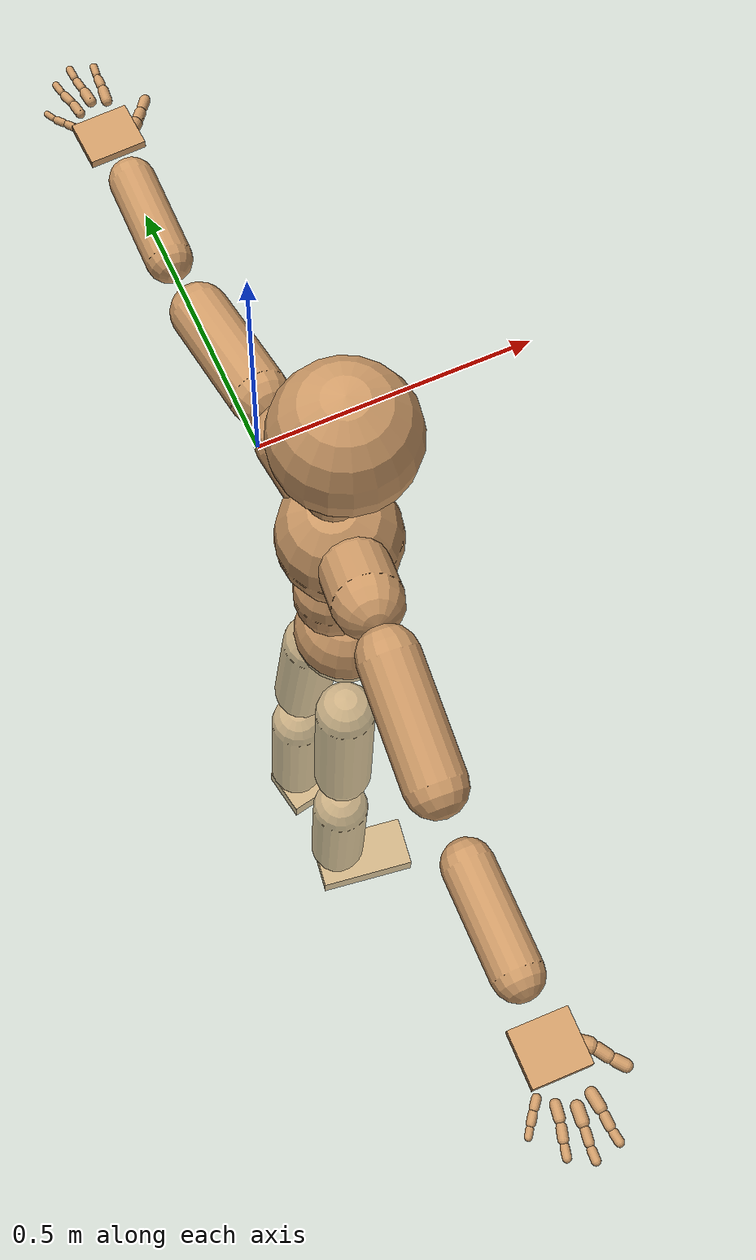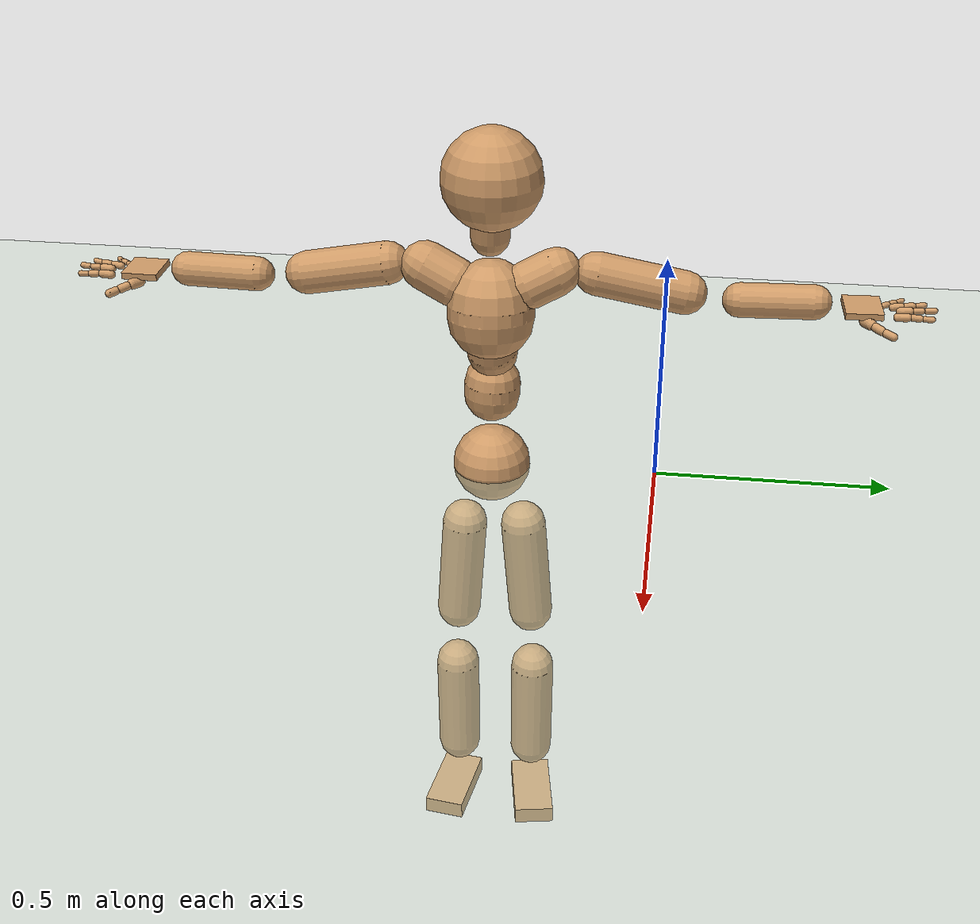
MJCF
<mujoco model="humanoid">
  <compiler coordinate="local" angle="radian"/>
  <default>
    <joint damping="0.0" armature="0.01" stiffness="0.0" limited="true"/>
    <geom conaffinity="1" condim="3" contype="7" margin="0.001" rgba="0.8 0.6 .4 1"/>
  </default>
  <asset>
    <texture type="skybox" builtin="gradient" rgb1=".4 .5 .6" rgb2="0 0 0" width="100" height="100"/>
    <texture builtin="flat" height="1278" mark="cross" markrgb="1 1 1" name="texgeom" random="0.01" rgb1="0.8 0.6 0.4" rgb2="0.8 0.6 0.4" type="cube" width="127"/>
    <texture builtin="checker" height="100" name="texplane" rgb1="0 0 0" rgb2="0.8 0.8 0.8" type="2d" width="100"/>
    <material name="MatPlane" reflectance="0.5" shininess="1" specular="1" texrepeat="60 60" texture="texplane"/>
    <material name="geom" texture="texgeom" texuniform="true"/>
  </asset>
  <worldbody>
    <light cutoff="100" diffuse="1 1 1" dir="-0 0 -1.3" directional="true" exponent="1" pos="0 0 1.3" specular=".1 .1 .1"/>
    <geom conaffinity="1" condim="3" name="floor" pos="0 0 0" rgba="0.8 0.9 0.8 1" size="100 100 .2" type="plane" material="MatPlane"/>
    <body name="Pelvis" pos="0.0003 -0.3561 0.0024">
      <freejoint name="Pelvis"/>
      <geom type="sphere" contype="1" conaffinity="1" density="500" size="0.0842" pos="0.0000 0.0000 0.0000" name="Pelvis"/>
      <body name="L_Hip" pos="-0.0251 0.061 -0.0896">
        <joint name="L_Hip_x" type="hinge" pos="0 0 0" axis="1 0 0" stiffness="800" damping="80" armature="0.02" range="-180.0000 180.0000"/>
        <joint name="L_Hip_y" type="hinge" pos="0 0 0" axis="0 1 0" stiffness="800" damping="80" armature="0.02" range="-180.0000 180.0000"/>
        <joint name="L_Hip_z" type="hinge" pos="0 0 0" axis="0 0 1" stiffness="800" damping="80" armature="0.02" range="-180.0000 180.0000"/>
        <geom type="capsule" contype="1" conaffinity="1" density="500" fromto="-0.0047 0.0058 -0.0849 -0.0189 0.0232 -0.3395" size="0.0502" name="L_Hip"/>
        <body name="L_Knee" pos="-0.0237 0.029 -0.4244">
          <joint name="L_Knee_x" type="hinge" pos="0 0 0" axis="1 0 0" stiffness="800" damping="80" armature="0.02" range="-180.0000 180.0000"/>
          <joint name="L_Knee_y" type="hinge" pos="0 0 0" axis="0 1 0" stiffness="800" damping="80" armature="0.02" range="-180.0000 180.0000"/>
          <joint name="L_Knee_z" type="hinge" pos="0 0 0" axis="0 0 1" stiffness="800" damping="80" armature="0.02" range="-180.0000 180.0000"/>
          <geom type="capsule" contype="1" conaffinity="1" density="500" fromto="-0.0027 -0.0008 -0.0869 -0.0110 -0.0032 -0.3475" size="0.0505" name="L_Knee"/>
          <body name="L_Ankle" pos="-0.0137 -0.0039 -0.4344">
            <joint name="L_Ankle_x" type="hinge" pos="0 0 0" axis="1 0 0" stiffness="800" damping="80" armature="0.02" range="-180.0000 180.0000"/>
            <joint name="L_Ankle_y" type="hinge" pos="0 0 0" axis="0 1 0" stiffness="800" damping="80" armature="0.02" range="-180.0000 180.0000"/>
            <joint name="L_Ankle_z" type="hinge" pos="0 0 0" axis="0 0 1" stiffness="800" damping="80" armature="0.02" range="-180.0000 180.0000"/>
            <geom type="box" contype="1" conaffinity="1" density="500" pos="0.0566 0.0100 -0.0258" size="0.0893 0.0464 0.0208" quat="0.9962 0.0000 0.0000 0.0874" name="L_Ankle"/>
            <body name="L_Toe" pos="0.1132 0.02 -0.0516">
              <joint name="L_Toe_x" type="hinge" pos="0 0 0" axis="1 0 0" stiffness="500" damping="50" armature="0.02" range="-180.0000 180.0000"/>
              <joint name="L_Toe_y" type="hinge" pos="0 0 0" axis="0 1 0" stiffness="500" damping="50" armature="0.02" range="-180.0000 180.0000"/>
              <joint name="L_Toe_z" type="hinge" pos="0 0 0" axis="0 0 1" stiffness="500" damping="50" armature="0.02" range="-180.0000 180.0000"/>
              <geom type="box" contype="1" conaffinity="1" density="500" pos="0.0000 0.0000 0.0253" size="0.0009 0.0023 0.001" quat="0.9955 0.0000 0.0000 0.0943" name="L_Toe"/>
            </body>
          </body>
        </body>
      </body>
      <body name="R_Hip" pos="-0.0265 -0.0602 -0.0968">
        <joint name="R_Hip_x" type="hinge" pos="0 0 0" axis="1 0 0" stiffness="800" damping="80" armature="0.02" range="-180.0000 180.0000"/>
        <joint name="R_Hip_y" type="hinge" pos="0 0 0" axis="0 1 0" stiffness="800" damping="80" armature="0.02" range="-180.0000 180.0000"/>
        <joint name="R_Hip_z" type="hinge" pos="0 0 0" axis="0 0 1" stiffness="800" damping="80" armature="0.02" range="-180.0000 180.0000"/>
        <geom type="capsule" contype="1" conaffinity="1" density="500" fromto="-0.0036 -0.0064 -0.0839 -0.0146 -0.0257 -0.3358" size="0.05" name="R_Hip"/>
        <body name="R_Knee" pos="-0.0182 -0.0321 -0.4197">
          <joint name="R_Knee_x" type="hinge" pos="0 0 0" axis="1 0 0" stiffness="800" damping="80" armature="0.02" range="-180.0000 180.0000"/>
          <joint name="R_Knee_y" type="hinge" pos="0 0 0" axis="0 1 0" stiffness="800" damping="80" armature="0.02" range="-180.0000 180.0000"/>
          <joint name="R_Knee_z" type="hinge" pos="0 0 0" axis="0 0 1" stiffness="800" damping="80" armature="0.02" range="-180.0000 180.0000"/>
          <geom type="capsule" contype="1" conaffinity="1" density="500" fromto="-0.0018 -0.0001 -0.0851 -0.0073 -0.0006 -0.3405" size="0.0505" name="R_Knee"/>
          <body name="R_Ankle" pos="-0.0092 -0.0007 -0.4257">
            <joint name="R_Ankle_x" type="hinge" pos="0 0 0" axis="1 0 0" stiffness="800" damping="80" armature="0.02" range="-180.0000 180.0000"/>
            <joint name="R_Ankle_y" type="hinge" pos="0 0 0" axis="0 1 0" stiffness="800" damping="80" armature="0.02" range="-180.0000 180.0000"/>
            <joint name="R_Ankle_z" type="hinge" pos="0 0 0" axis="0 0 1" stiffness="800" damping="80" armature="0.02" range="-180.0000 180.0000"/>
            <geom type="box" contype="1" conaffinity="1" density="500" pos="0.0532 -0.0079 -0.0277" size="0.0893 0.0464 0.0208" quat="0.9973 0.0000 0.0000 -0.0732" name="R_Ankle"/>
            <body name="R_Toe" pos="0.1063 -0.0157 -0.0554">
              <joint name="R_Toe_x" type="hinge" pos="0 0 0" axis="1 0 0" stiffness="500" damping="50" armature="0.02" range="-180.0000 180.0000"/>
              <joint name="R_Toe_y" type="hinge" pos="0 0 0" axis="0 1 0" stiffness="500" damping="50" armature="0.02" range="-180.0000 180.0000"/>
              <joint name="R_Toe_z" type="hinge" pos="0 0 0" axis="0 0 1" stiffness="500" damping="50" armature="0.02" range="-180.0000 180.0000"/>
              <geom type="box" contype="1" conaffinity="1" density="500" pos="0.0000 0.0000 0.0272" size="0.0009 0.0023 0.001" quat="0.9980 0.0000 0.0000 -0.0629" name="R_Toe"/>
            </body>
          </body>
        </body>
      </body>
      <body name="Torso" pos="-0.0226 -0.0046 0.1021">
        <joint name="Torso_x" type="hinge" pos="0 0 0" axis="1 0 0" stiffness="1000" damping="100" armature="0.02" range="-180.0000 180.0000"/>
        <joint name="Torso_y" type="hinge" pos="0 0 0" axis="0 1 0" stiffness="1000" damping="100" armature="0.02" range="-180.0000 180.0000"/>
        <joint name="Torso_z" type="hinge" pos="0 0 0" axis="0 0 1" stiffness="1000" damping="100" armature="0.02" range="-180.0000 180.0000"/>
        <geom type="capsule" contype="1" conaffinity="1" density="500" fromto="-0.0030 0.0036 0.0834 -0.0020 0.0024 0.0556" size="0.0601" name="Torso"/>
        <body name="Spine" pos="-0.005 0.006 0.139">
          <joint name="Spine_x" type="hinge" pos="0 0 0" axis="1 0 0" stiffness="1000" damping="100" armature="0.02" range="-180.0000 180.0000"/>
          <joint name="Spine_y" type="hinge" pos="0 0 0" axis="0 1 0" stiffness="1000" damping="100" armature="0.02" range="-180.0000 180.0000"/>
          <joint name="Spine_z" type="hinge" pos="0 0 0" axis="0 0 1" stiffness="1000" damping="100" armature="0.02" range="-180.0000 180.0000"/>
          <geom type="capsule" contype="1" conaffinity="1" density="500" fromto="0.0122 -0.0014 0.0301 0.0081 -0.0010 0.0201" size="0.054" name="Spine"/>
          <body name="Chest" pos="0.0203 -0.0024 0.0502">
            <joint name="Chest_x" type="hinge" pos="0 0 0" axis="1 0 0" stiffness="1000" damping="100" armature="0.02" range="-180.0000 180.0000"/>
            <joint name="Chest_y" type="hinge" pos="0 0 0" axis="0 1 0" stiffness="1000" damping="100" armature="0.02" range="-180.0000 180.0000"/>
            <joint name="Chest_z" type="hinge" pos="0 0 0" axis="0 0 1" stiffness="1000" damping="100" armature="0.02" range="-180.0000 180.0000"/>
            <geom type="capsule" contype="1" conaffinity="1" density="500" fromto="-0.0103 -0.0015 0.0835 -0.0069 -0.0010 0.0556" size="0.0922" name="Chest"/>
            <body name="Neck" pos="-0.0247 -0.0054 0.1932">
              <joint name="Neck_x" type="hinge" pos="0 0 0" axis="1 0 0" stiffness="500" damping="50" armature="0.02" range="-180.0000 180.0000"/>
              <joint name="Neck_y" type="hinge" pos="0 0 0" axis="0 1 0" stiffness="500" damping="50" armature="0.02" range="-180.0000 180.0000"/>
              <joint name="Neck_z" type="hinge" pos="0 0 0" axis="0 0 1" stiffness="500" damping="50" armature="0.02" range="-180.0000 180.0000"/>
              <geom type="capsule" contype="1" conaffinity="1" density="500" fromto="0.0047 0.0018 0.0324 0.0187 0.0070 0.1294" size="0.041" name="Neck"/>
              <body name="Head" pos="0.0234 0.0088 0.1618">
                <joint name="Head_x" type="hinge" pos="0 0 0" axis="1 0 0" stiffness="500" damping="50" armature="0.02" range="-180.0000 180.0000"/>
                <joint name="Head_y" type="hinge" pos="0 0 0" axis="0 1 0" stiffness="500" damping="50" armature="0.02" range="-180.0000 180.0000"/>
                <joint name="Head_z" type="hinge" pos="0 0 0" axis="0 0 1" stiffness="500" damping="50" armature="0.02" range="-180.0000 180.0000"/>
                <geom type="sphere" contype="1" conaffinity="1" density="500" size="0.1043" pos="0.0000 0.0000 0.0000" name="Head"/>
              </body>
            </body>
            <body name="L_Thorax" pos="-0.0105 0.0532 0.1141">
              <joint name="L_Thorax_x" type="hinge" pos="0 0 0" axis="1 0 0" stiffness="500" damping="50" armature="0.02" range="-180.0000 180.0000"/>
              <joint name="L_Thorax_y" type="hinge" pos="0 0 0" axis="0 1 0" stiffness="500" damping="50" armature="0.02" range="-180.0000 180.0000"/>
              <joint name="L_Thorax_z" type="hinge" pos="0 0 0" axis="0 0 1" stiffness="500" damping="50" armature="0.02" range="-180.0000 180.0000"/>
              <geom type="capsule" contype="1" conaffinity="1" density="500" fromto="-0.0044 0.0197 0.0097 -0.0175 0.0786 0.0387" size="0.0508" name="L_Thorax"/>
              <body name="L_Shoulder" pos="-0.0219 0.0983 0.0484">
                <joint name="L_Shoulder_x" type="hinge" pos="0 0 0" axis="1 0 0" stiffness="500" damping="50" armature="0.02" range="-180.0000 180.0000"/>
                <joint name="L_Shoulder_y" type="hinge" pos="0 0 0" axis="0 1 0" stiffness="500" damping="50" armature="0.02" range="-180.0000 180.0000"/>
                <joint name="L_Shoulder_z" type="hinge" pos="0 0 0" axis="0 0 1" stiffness="500" damping="50" armature="0.02" range="-180.0000 180.0000"/>
                <geom type="capsule" contype="1" conaffinity="1" density="500" fromto="-0.0056 0.0612 -0.0134 -0.0224 0.2447 -0.0537" size="0.045" name="L_Shoulder"/>
                <body name="L_Elbow" pos="-0.0281 0.3059 -0.0671">
                  <joint name="L_Elbow_x" type="hinge" pos="0 0 0" axis="1 0 0" stiffness="500" damping="50" armature="0.02" range="-720.0000 720.0000"/>
                  <joint name="L_Elbow_y" type="hinge" pos="0 0 0" axis="0 1 0" stiffness="500" damping="50" armature="0.02" range="-720.0000 720.0000"/>
                  <joint name="L_Elbow_z" type="hinge" pos="0 0 0" axis="0 0 1" stiffness="500" damping="50" armature="0.02" range="-720.0000 720.0000"/>
                  <geom type="capsule" contype="1" conaffinity="1" density="500" fromto="0.0005 0.0503 0.0015 0.0019 0.2011 0.0058" size="0.0362" name="L_Elbow"/>
                  <body name="L_Wrist" pos="0.0023 0.2514 0.0073">
                    <joint name="L_Wrist_x" type="hinge" pos="0 0 0" axis="1 0 0" stiffness="300" damping="30" armature="0.02" range="-180.0000 180.0000"/>
                    <joint name="L_Wrist_y" type="hinge" pos="0 0 0" axis="0 1 0" stiffness="300" damping="30" armature="0.02" range="-180.0000 180.0000"/>
                    <joint name="L_Wrist_z" type="hinge" pos="0 0 0" axis="0 0 1" stiffness="300" damping="30" armature="0.02" range="-180.0000 180.0000"/>
                    <geom type="box" contype="1" conaffinity="1" density="500" pos="-0.0021 0.0472 -0.0089" size="0.0384 0.0445 0.0069" quat="0.7225 0.0000 0.0000 -0.6914" name="L_Wrist"/>
                    <body name="L_Index1" pos="0.0202 0.1104 -0.0161">
                      <joint name="L_Index1_x" type="hinge" pos="0 0 0" axis="1 0 0" stiffness="100" damping="10" armature="0.02" range="-180.0000 180.0000"/>
                      <joint name="L_Index1_y" type="hinge" pos="0 0 0" axis="0 1 0" stiffness="100" damping="10" armature="0.02" range="-180.0000 180.0000"/>
                      <joint name="L_Index1_z" type="hinge" pos="0 0 0" axis="0 0 1" stiffness="100" damping="10" armature="0.02" range="-180.0000 180.0000"/>
                      <geom type="capsule" contype="1" conaffinity="1" density="500" fromto="0.0005 0.0064 0.0006 0.0021 0.0258 0.0022" size="0.0086" name="L_Index1"/>
                      <body name="L_Index2" pos="0.0026 0.0322 0.0028">
                        <joint name="L_Index2_x" type="hinge" pos="0 0 0" axis="1 0 0" stiffness="100" damping="10" armature="0.02" range="-180.0000 180.0000"/>
                        <joint name="L_Index2_y" type="hinge" pos="0 0 0" axis="0 1 0" stiffness="100" damping="10" armature="0.02" range="-180.0000 180.0000"/>
                        <joint name="L_Index2_z" type="hinge" pos="0 0 0" axis="0 0 1" stiffness="100" damping="10" armature="0.02" range="-180.0000 180.0000"/>
                        <geom type="capsule" contype="1" conaffinity="1" density="500" fromto="0.0001 0.0046 -0.0003 0.0004 0.0182 -0.0012" size="0.0072" name="L_Index2"/>
                        <body name="L_Index3" pos="0.0005 0.0228 -0.0015">
                          <joint name="L_Index3_x" type="hinge" pos="0 0 0" axis="1 0 0" stiffness="100" damping="10" armature="0.02" range="-180.0000 180.0000"/>
                          <joint name="L_Index3_y" type="hinge" pos="0 0 0" axis="0 1 0" stiffness="100" damping="10" armature="0.02" range="-180.0000 180.0000"/>
                          <joint name="L_Index3_z" type="hinge" pos="0 0 0" axis="0 0 1" stiffness="100" damping="10" armature="0.02" range="-180.0000 180.0000"/>
                          <geom type="capsule" contype="1" conaffinity="1" density="500" fromto="0.0005 0.0050 0.0001 0.0020 0.0198 0.0004" size="0.0062" name="L_Index3"/>
                        </body>
                      </body>
                    </body>
                    <body name="L_Middle1" pos="-0.0022 0.1177 -0.0136">
                      <joint name="L_Middle1_x" type="hinge" pos="0 0 0" axis="1 0 0" stiffness="100" damping="10" armature="0.02" range="-180.0000 180.0000"/>
                      <joint name="L_Middle1_y" type="hinge" pos="0 0 0" axis="0 1 0" stiffness="100" damping="10" armature="0.02" range="-180.0000 180.0000"/>
                      <joint name="L_Middle1_z" type="hinge" pos="0 0 0" axis="0 0 1" stiffness="100" damping="10" armature="0.02" range="-180.0000 180.0000"/>
                      <geom type="capsule" contype="1" conaffinity="1" density="500" fromto="-0.0008 0.0062 0.0003 -0.0031 0.0246 0.0010" size="0.0087" name="L_Middle1"/>
                      <body name="L_Middle2" pos="-0.0039 0.0308 0.0013">
                        <joint name="L_Middle2_x" type="hinge" pos="0 0 0" axis="1 0 0" stiffness="100" damping="10" armature="0.02" range="-180.0000 180.0000"/>
                        <joint name="L_Middle2_y" type="hinge" pos="0 0 0" axis="0 1 0" stiffness="100" damping="10" armature="0.02" range="-180.0000 180.0000"/>
                        <joint name="L_Middle2_z" type="hinge" pos="0 0 0" axis="0 0 1" stiffness="100" damping="10" armature="0.02" range="-180.0000 180.0000"/>
                        <geom type="capsule" contype="1" conaffinity="1" density="500" fromto="-0.0008 0.0048 -0.0001 -0.0030 0.0192 -0.0005" size="0.0066" name="L_Middle2"/>
                        <body name="L_Middle3" pos="-0.0038 0.024 -0.0006">
                          <joint name="L_Middle3_x" type="hinge" pos="0 0 0" axis="1 0 0" stiffness="100" damping="10" armature="0.02" range="-180.0000 180.0000"/>
                          <joint name="L_Middle3_y" type="hinge" pos="0 0 0" axis="0 1 0" stiffness="100" damping="10" armature="0.02" range="-180.0000 180.0000"/>
                          <joint name="L_Middle3_z" type="hinge" pos="0 0 0" axis="0 0 1" stiffness="100" damping="10" armature="0.02" range="-180.0000 180.0000"/>
                          <geom type="capsule" contype="1" conaffinity="1" density="500" fromto="-0.0004 0.0052 0.0003 -0.0014 0.0208 0.0011" size="0.0061" name="L_Middle3"/>
                        </body>
                      </body>
                    </body>
                    <body name="L_Pinky1" pos="-0.0407 0.0912 -0.0208">
                      <joint name="L_Pinky1_x" type="hinge" pos="0 0 0" axis="1 0 0" stiffness="100" damping="10" armature="0.02" range="-180.0000 180.0000"/>
                      <joint name="L_Pinky1_y" type="hinge" pos="0 0 0" axis="0 1 0" stiffness="100" damping="10" armature="0.02" range="-180.0000 180.0000"/>
                      <joint name="L_Pinky1_z" type="hinge" pos="0 0 0" axis="0 0 1" stiffness="100" damping="10" armature="0.02" range="-180.0000 180.0000"/>
                      <geom type="capsule" contype="1" conaffinity="1" density="500" fromto="-0.0024 0.0030 -0.0001 -0.0097 0.0119 -0.0003" size="0.0063" name="L_Pinky1"/>
                      <body name="L_Pinky2" pos="-0.0121 0.0148 -0.0003">
                        <joint name="L_Pinky2_x" type="hinge" pos="0 0 0" axis="1 0 0" stiffness="100" damping="10" armature="0.02" range="-180.0000 180.0000"/>
                        <joint name="L_Pinky2_y" type="hinge" pos="0 0 0" axis="0 1 0" stiffness="100" damping="10" armature="0.02" range="-180.0000 180.0000"/>
                        <joint name="L_Pinky2_z" type="hinge" pos="0 0 0" axis="0 0 1" stiffness="100" damping="10" armature="0.02" range="-180.0000 180.0000"/>
                        <geom type="capsule" contype="1" conaffinity="1" density="500" fromto="-0.0024 0.0030 -0.0002 -0.0095 0.0120 -0.0006" size="0.0061" name="L_Pinky2"/>
                        <body name="L_Pinky3" pos="-0.0119 0.015 -0.0008">
                          <joint name="L_Pinky3_x" type="hinge" pos="0 0 0" axis="1 0 0" stiffness="100" damping="10" armature="0.02" range="-180.0000 180.0000"/>
                          <joint name="L_Pinky3_y" type="hinge" pos="0 0 0" axis="0 1 0" stiffness="100" damping="10" armature="0.02" range="-180.0000 180.0000"/>
                          <joint name="L_Pinky3_z" type="hinge" pos="0 0 0" axis="0 0 1" stiffness="100" damping="10" armature="0.02" range="-180.0000 180.0000"/>
                          <geom type="capsule" contype="1" conaffinity="1" density="500" fromto="-0.0020 0.0034 0.0002 -0.0079 0.0136 0.0010" size="0.0049" name="L_Pinky3"/>
                        </body>
                      </body>
                    </body>
                    <body name="L_Ring1" pos="-0.0247 0.1051 -0.0159">
                      <joint name="L_Ring1_x" type="hinge" pos="0 0 0" axis="1 0 0" stiffness="100" damping="10" armature="0.02" range="-180.0000 180.0000"/>
                      <joint name="L_Ring1_y" type="hinge" pos="0 0 0" axis="0 1 0" stiffness="100" damping="10" armature="0.02" range="-180.0000 180.0000"/>
                      <joint name="L_Ring1_z" type="hinge" pos="0 0 0" axis="0 0 1" stiffness="100" damping="10" armature="0.02" range="-180.0000 180.0000"/>
                      <geom type="capsule" contype="1" conaffinity="1" density="500" fromto="-0.0011 0.0056 0.0003 -0.0043 0.0224 0.0014" size="0.0076" name="L_Ring1"/>
                      <body name="L_Ring2" pos="-0.0054 0.028 0.0017">
                        <joint name="L_Ring2_x" type="hinge" pos="0 0 0" axis="1 0 0" stiffness="100" damping="10" armature="0.02" range="-180.0000 180.0000"/>
                        <joint name="L_Ring2_y" type="hinge" pos="0 0 0" axis="0 1 0" stiffness="100" damping="10" armature="0.02" range="-180.0000 180.0000"/>
                        <joint name="L_Ring2_z" type="hinge" pos="0 0 0" axis="0 0 1" stiffness="100" damping="10" armature="0.02" range="-180.0000 180.0000"/>
                        <geom type="capsule" contype="1" conaffinity="1" density="500" fromto="-0.0014 0.0046 -0.0002 -0.0058 0.0183 -0.0007" size="0.0071" name="L_Ring2"/>
                        <body name="L_Ring3" pos="-0.0072 0.0229 -0.0009">
                          <joint name="L_Ring3_x" type="hinge" pos="0 0 0" axis="1 0 0" stiffness="100" damping="10" armature="0.02" range="-180.0000 180.0000"/>
                          <joint name="L_Ring3_y" type="hinge" pos="0 0 0" axis="0 1 0" stiffness="100" damping="10" armature="0.02" range="-180.0000 180.0000"/>
                          <joint name="L_Ring3_z" type="hinge" pos="0 0 0" axis="0 0 1" stiffness="100" damping="10" armature="0.02" range="-180.0000 180.0000"/>
                          <geom type="capsule" contype="1" conaffinity="1" density="500" fromto="-0.0010 0.0050 0.0002 -0.0042 0.0199 0.0009" size="0.0057" name="L_Ring3"/>
                        </body>
                      </body>
                    </body>
                    <body name="L_Thumb1" pos="0.0266 0.0481 -0.0229">
                      <joint name="L_Thumb1_x" type="hinge" pos="0 0 0" axis="1 0 0" stiffness="100" damping="10" armature="0.02" range="-180.0000 180.0000"/>
                      <joint name="L_Thumb1_y" type="hinge" pos="0 0 0" axis="0 1 0" stiffness="100" damping="10" armature="0.02" range="-180.0000 180.0000"/>
                      <joint name="L_Thumb1_z" type="hinge" pos="0 0 0" axis="0 0 1" stiffness="100" damping="10" armature="0.02" range="-180.0000 180.0000"/>
                      <geom type="capsule" contype="1" conaffinity="1" density="500" fromto="0.0048 0.0037 0.0000 0.0193 0.0147 0.0002" size="0.0117" name="L_Thumb1"/>
                      <body name="L_Thumb2" pos="0.0241 0.0183 0.0002">
                        <joint name="L_Thumb2_x" type="hinge" pos="0 0 0" axis="1 0 0" stiffness="100" damping="10" armature="0.02" range="-180.0000 180.0000"/>
                        <joint name="L_Thumb2_y" type="hinge" pos="0 0 0" axis="0 1 0" stiffness="100" damping="10" armature="0.02" range="-180.0000 180.0000"/>
                        <joint name="L_Thumb2_z" type="hinge" pos="0 0 0" axis="0 0 1" stiffness="100" damping="10" armature="0.02" range="-180.0000 180.0000"/>
                        <geom type="capsule" contype="1" conaffinity="1" density="500" fromto="0.0030 0.0042 -0.0012 0.0119 0.0169 -0.0047" size="0.0091" name="L_Thumb2"/>
                        <body name="L_Thumb3" pos="0.0148 0.0212 -0.0059">
                          <joint name="L_Thumb3_x" type="hinge" pos="0 0 0" axis="1 0 0" stiffness="100" damping="10" armature="0.02" range="-180.0000 180.0000"/>
                          <joint name="L_Thumb3_y" type="hinge" pos="0 0 0" axis="0 1 0" stiffness="100" damping="10" armature="0.02" range="-180.0000 180.0000"/>
                          <joint name="L_Thumb3_z" type="hinge" pos="0 0 0" axis="0 0 1" stiffness="100" damping="10" armature="0.02" range="-180.0000 180.0000"/>
                          <geom type="capsule" contype="1" conaffinity="1" density="500" fromto="0.0034 0.0046 -0.0008 0.0135 0.0185 -0.0031" size="0.0085" name="L_Thumb3"/>
                        </body>
                      </body>
                    </body>
                  </body>
                </body>
              </body>
            </body>
            <body name="R_Thorax" pos="-0.0162 -0.0553 0.11">
              <joint name="R_Thorax_x" type="hinge" pos="0 0 0" axis="1 0 0" stiffness="500" damping="50" armature="0.02" range="-180.0000 180.0000"/>
              <joint name="R_Thorax_y" type="hinge" pos="0 0 0" axis="0 1 0" stiffness="500" damping="50" armature="0.02" range="-180.0000 180.0000"/>
              <joint name="R_Thorax_z" type="hinge" pos="0 0 0" axis="0 0 1" stiffness="500" damping="50" armature="0.02" range="-180.0000 180.0000"/>
              <geom type="capsule" contype="1" conaffinity="1" density="500" fromto="-0.0033 -0.0212 0.0102 -0.0132 -0.0850 0.0409" size="0.0517" name="R_Thorax"/>
              <body name="R_Shoulder" pos="-0.0164 -0.1062 0.0512">
                <joint name="R_Shoulder_x" type="hinge" pos="0 0 0" axis="1 0 0" stiffness="500" damping="50" armature="0.02" range="-180.0000 180.0000"/>
                <joint name="R_Shoulder_y" type="hinge" pos="0 0 0" axis="0 1 0" stiffness="500" damping="50" armature="0.02" range="-180.0000 180.0000"/>
                <joint name="R_Shoulder_z" type="hinge" pos="0 0 0" axis="0 0 1" stiffness="500" damping="50" armature="0.02" range="-180.0000 180.0000"/>
                <geom type="capsule" contype="1" conaffinity="1" density="500" fromto="-0.0040 -0.0589 -0.0124 -0.0161 -0.2356 -0.0494" size="0.0453" name="R_Shoulder"/>
                <body name="R_Elbow" pos="-0.0201 -0.2945 -0.0618">
                  <joint name="R_Elbow_x" type="hinge" pos="0 0 0" axis="1 0 0" stiffness="500" damping="50" armature="0.02" range="-720.0000 720.0000"/>
                  <joint name="R_Elbow_y" type="hinge" pos="0 0 0" axis="0 1 0" stiffness="500" damping="50" armature="0.02" range="-720.0000 720.0000"/>
                  <joint name="R_Elbow_z" type="hinge" pos="0 0 0" axis="0 0 1" stiffness="500" damping="50" armature="0.02" range="-720.0000 720.0000"/>
                  <geom type="capsule" contype="1" conaffinity="1" density="500" fromto="-0.0014 -0.0505 0.0005 -0.0054 -0.2021 0.0021" size="0.0365" name="R_Elbow"/>
                  <body name="R_Wrist" pos="-0.0068 -0.2526 0.0026">
                    <joint name="R_Wrist_x" type="hinge" pos="0 0 0" axis="1 0 0" stiffness="300" damping="30" armature="0.02" range="-180.0000 180.0000"/>
                    <joint name="R_Wrist_y" type="hinge" pos="0 0 0" axis="0 1 0" stiffness="300" damping="30" armature="0.02" range="-180.0000 180.0000"/>
                    <joint name="R_Wrist_z" type="hinge" pos="0 0 0" axis="0 0 1" stiffness="300" damping="30" armature="0.02" range="-180.0000 180.0000"/>
                    <geom type="box" contype="1" conaffinity="1" density="500" pos="-0.0014 -0.0465 -0.0086" size="0.0384 0.0419 0.0071" quat="0.7174 0.0000 0.0000 0.6966" name="R_Wrist"/>
                    <body name="R_Index1" pos="0.0216 -0.109 -0.0155">
                      <joint name="R_Index1_x" type="hinge" pos="0 0 0" axis="1 0 0" stiffness="100" damping="10" armature="0.02" range="-180.0000 180.0000"/>
                      <joint name="R_Index1_y" type="hinge" pos="0 0 0" axis="0 1 0" stiffness="100" damping="10" armature="0.02" range="-180.0000 180.0000"/>
                      <joint name="R_Index1_z" type="hinge" pos="0 0 0" axis="0 0 1" stiffness="100" damping="10" armature="0.02" range="-180.0000 180.0000"/>
                      <geom type="capsule" contype="1" conaffinity="1" density="500" fromto="0.0005 -0.0064 0.0006 0.0021 -0.0258 0.0022" size="0.0086" name="R_Index1"/>
                      <body name="R_Index2" pos="0.0026 -0.0322 0.0028">
                        <joint name="R_Index2_x" type="hinge" pos="0 0 0" axis="1 0 0" stiffness="100" damping="10" armature="0.02" range="-180.0000 180.0000"/>
                        <joint name="R_Index2_y" type="hinge" pos="0 0 0" axis="0 1 0" stiffness="100" damping="10" armature="0.02" range="-180.0000 180.0000"/>
                        <joint name="R_Index2_z" type="hinge" pos="0 0 0" axis="0 0 1" stiffness="100" damping="10" armature="0.02" range="-180.0000 180.0000"/>
                        <geom type="capsule" contype="1" conaffinity="1" density="500" fromto="0.0001 -0.0046 -0.0003 0.0004 -0.0182 -0.0012" size="0.0072" name="R_Index2"/>
                        <body name="R_Index3" pos="0.0005 -0.0228 -0.0015">
                          <joint name="R_Index3_x" type="hinge" pos="0 0 0" axis="1 0 0" stiffness="100" damping="10" armature="0.02" range="-180.0000 180.0000"/>
                          <joint name="R_Index3_y" type="hinge" pos="0 0 0" axis="0 1 0" stiffness="100" damping="10" armature="0.02" range="-180.0000 180.0000"/>
                          <joint name="R_Index3_z" type="hinge" pos="0 0 0" axis="0 0 1" stiffness="100" damping="10" armature="0.02" range="-180.0000 180.0000"/>
                          <geom type="capsule" contype="1" conaffinity="1" density="500" fromto="0.0005 -0.0042 0.0001 0.0020 -0.0166 0.0004" size="0.0064" name="R_Index3"/>
                        </body>
                      </body>
                    </body>
                    <body name="R_Middle1" pos="-0.0008 -0.1163 -0.013">
                      <joint name="R_Middle1_x" type="hinge" pos="0 0 0" axis="1 0 0" stiffness="100" damping="10" armature="0.02" range="-180.0000 180.0000"/>
                      <joint name="R_Middle1_y" type="hinge" pos="0 0 0" axis="0 1 0" stiffness="100" damping="10" armature="0.02" range="-180.0000 180.0000"/>
                      <joint name="R_Middle1_z" type="hinge" pos="0 0 0" axis="0 0 1" stiffness="100" damping="10" armature="0.02" range="-180.0000 180.0000"/>
                      <geom type="capsule" contype="1" conaffinity="1" density="500" fromto="-0.0008 -0.0062 0.0003 -0.0031 -0.0246 0.0010" size="0.0087" name="R_Middle1"/>
                      <body name="R_Middle2" pos="-0.0039 -0.0308 0.0013">
                        <joint name="R_Middle2_x" type="hinge" pos="0 0 0" axis="1 0 0" stiffness="100" damping="10" armature="0.02" range="-180.0000 180.0000"/>
                        <joint name="R_Middle2_y" type="hinge" pos="0 0 0" axis="0 1 0" stiffness="100" damping="10" armature="0.02" range="-180.0000 180.0000"/>
                        <joint name="R_Middle2_z" type="hinge" pos="0 0 0" axis="0 0 1" stiffness="100" damping="10" armature="0.02" range="-180.0000 180.0000"/>
                        <geom type="capsule" contype="1" conaffinity="1" density="500" fromto="-0.0008 -0.0048 -0.0001 -0.0030 -0.0192 -0.0005" size="0.0066" name="R_Middle2"/>
                        <body name="R_Middle3" pos="-0.0038 -0.024 -0.0006">
                          <joint name="R_Middle3_x" type="hinge" pos="0 0 0" axis="1 0 0" stiffness="100" damping="10" armature="0.02" range="-180.0000 180.0000"/>
                          <joint name="R_Middle3_y" type="hinge" pos="0 0 0" axis="0 1 0" stiffness="100" damping="10" armature="0.02" range="-180.0000 180.0000"/>
                          <joint name="R_Middle3_z" type="hinge" pos="0 0 0" axis="0 0 1" stiffness="100" damping="10" armature="0.02" range="-180.0000 180.0000"/>
                          <geom type="capsule" contype="1" conaffinity="1" density="500" fromto="-0.0004 -0.0044 0.0003 -0.0014 -0.0176 0.0011" size="0.0063" name="R_Middle3"/>
                        </body>
                      </body>
                    </body>
                    <body name="R_Pinky1" pos="-0.0393 -0.0898 -0.0202">
                      <joint name="R_Pinky1_x" type="hinge" pos="0 0 0" axis="1 0 0" stiffness="100" damping="10" armature="0.02" range="-180.0000 180.0000"/>
                      <joint name="R_Pinky1_y" type="hinge" pos="0 0 0" axis="0 1 0" stiffness="100" damping="10" armature="0.02" range="-180.0000 180.0000"/>
                      <joint name="R_Pinky1_z" type="hinge" pos="0 0 0" axis="0 0 1" stiffness="100" damping="10" armature="0.02" range="-180.0000 180.0000"/>
                      <geom type="capsule" contype="1" conaffinity="1" density="500" fromto="-0.0024 -0.0030 -0.0001 -0.0097 -0.0118 -0.0003" size="0.0063" name="R_Pinky1"/>
                      <body name="R_Pinky2" pos="-0.0121 -0.0148 -0.0003">
                        <joint name="R_Pinky2_x" type="hinge" pos="0 0 0" axis="1 0 0" stiffness="100" damping="10" armature="0.02" range="-180.0000 180.0000"/>
                        <joint name="R_Pinky2_y" type="hinge" pos="0 0 0" axis="0 1 0" stiffness="100" damping="10" armature="0.02" range="-180.0000 180.0000"/>
                        <joint name="R_Pinky2_z" type="hinge" pos="0 0 0" axis="0 0 1" stiffness="100" damping="10" armature="0.02" range="-180.0000 180.0000"/>
                        <geom type="capsule" contype="1" conaffinity="1" density="500" fromto="-0.0024 -0.0030 -0.0002 -0.0095 -0.0120 -0.0006" size="0.0061" name="R_Pinky2"/>
                        <body name="R_Pinky3" pos="-0.0119 -0.015 -0.0008">
                          <joint name="R_Pinky3_x" type="hinge" pos="0 0 0" axis="1 0 0" stiffness="100" damping="10" armature="0.02" range="-180.0000 180.0000"/>
                          <joint name="R_Pinky3_y" type="hinge" pos="0 0 0" axis="0 1 0" stiffness="100" damping="10" armature="0.02" range="-180.0000 180.0000"/>
                          <joint name="R_Pinky3_z" type="hinge" pos="0 0 0" axis="0 0 1" stiffness="100" damping="10" armature="0.02" range="-180.0000 180.0000"/>
                          <geom type="capsule" contype="1" conaffinity="1" density="500" fromto="-0.0020 -0.0026 0.0002 -0.0079 -0.0104 0.0010" size="0.0051" name="R_Pinky3"/>
                        </body>
                      </body>
                    </body>
                    <body name="R_Ring1" pos="-0.0233 -0.1037 -0.0153">
                      <joint name="R_Ring1_x" type="hinge" pos="0 0 0" axis="1 0 0" stiffness="100" damping="10" armature="0.02" range="-180.0000 180.0000"/>
                      <joint name="R_Ring1_y" type="hinge" pos="0 0 0" axis="0 1 0" stiffness="100" damping="10" armature="0.02" range="-180.0000 180.0000"/>
                      <joint name="R_Ring1_z" type="hinge" pos="0 0 0" axis="0 0 1" stiffness="100" damping="10" armature="0.02" range="-180.0000 180.0000"/>
                      <geom type="capsule" contype="1" conaffinity="1" density="500" fromto="-0.0011 -0.0056 0.0003 -0.0043 -0.0224 0.0014" size="0.0076" name="R_Ring1"/>
                      <body name="R_Ring2" pos="-0.0054 -0.028 0.0017">
                        <joint name="R_Ring2_x" type="hinge" pos="0 0 0" axis="1 0 0" stiffness="100" damping="10" armature="0.02" range="-180.0000 180.0000"/>
                        <joint name="R_Ring2_y" type="hinge" pos="0 0 0" axis="0 1 0" stiffness="100" damping="10" armature="0.02" range="-180.0000 180.0000"/>
                        <joint name="R_Ring2_z" type="hinge" pos="0 0 0" axis="0 0 1" stiffness="100" damping="10" armature="0.02" range="-180.0000 180.0000"/>
                        <geom type="capsule" contype="1" conaffinity="1" density="500" fromto="-0.0014 -0.0046 -0.0002 -0.0058 -0.0183 -0.0007" size="0.0071" name="R_Ring2"/>
                        <body name="R_Ring3" pos="-0.0072 -0.0229 -0.0009">
                          <joint name="R_Ring3_x" type="hinge" pos="0 0 0" axis="1 0 0" stiffness="100" damping="10" armature="0.02" range="-180.0000 180.0000"/>
                          <joint name="R_Ring3_y" type="hinge" pos="0 0 0" axis="0 1 0" stiffness="100" damping="10" armature="0.02" range="-180.0000 180.0000"/>
                          <joint name="R_Ring3_z" type="hinge" pos="0 0 0" axis="0 0 1" stiffness="100" damping="10" armature="0.02" range="-180.0000 180.0000"/>
                          <geom type="capsule" contype="1" conaffinity="1" density="500" fromto="-0.0010 -0.0042 0.0002 -0.0042 -0.0167 0.0009" size="0.006" name="R_Ring3"/>
                        </body>
                      </body>
                    </body>
                    <body name="R_Thumb1" pos="0.028 -0.0467 -0.0223">
                      <joint name="R_Thumb1_x" type="hinge" pos="0 0 0" axis="1 0 0" stiffness="100" damping="10" armature="0.02" range="-180.0000 180.0000"/>
                      <joint name="R_Thumb1_y" type="hinge" pos="0 0 0" axis="0 1 0" stiffness="100" damping="10" armature="0.02" range="-180.0000 180.0000"/>
                      <joint name="R_Thumb1_z" type="hinge" pos="0 0 0" axis="0 0 1" stiffness="100" damping="10" armature="0.02" range="-180.0000 180.0000"/>
                      <geom type="capsule" contype="1" conaffinity="1" density="500" fromto="0.0048 -0.0037 0.0000 0.0193 -0.0147 0.0002" size="0.0117" name="R_Thumb1"/>
                      <body name="R_Thumb2" pos="0.0241 -0.0183 0.0002">
                        <joint name="R_Thumb2_x" type="hinge" pos="0 0 0" axis="1 0 0" stiffness="100" damping="10" armature="0.02" range="-180.0000 180.0000"/>
                        <joint name="R_Thumb2_y" type="hinge" pos="0 0 0" axis="0 1 0" stiffness="100" damping="10" armature="0.02" range="-180.0000 180.0000"/>
                        <joint name="R_Thumb2_z" type="hinge" pos="0 0 0" axis="0 0 1" stiffness="100" damping="10" armature="0.02" range="-180.0000 180.0000"/>
                        <geom type="capsule" contype="1" conaffinity="1" density="500" fromto="0.0030 -0.0042 -0.0012 0.0119 -0.0169 -0.0047" size="0.0091" name="R_Thumb2"/>
                        <body name="R_Thumb3" pos="0.0148 -0.0212 -0.0059">
                          <joint name="R_Thumb3_x" type="hinge" pos="0 0 0" axis="1 0 0" stiffness="100" damping="10" armature="0.02" range="-180.0000 180.0000"/>
                          <joint name="R_Thumb3_y" type="hinge" pos="0 0 0" axis="0 1 0" stiffness="100" damping="10" armature="0.02" range="-180.0000 180.0000"/>
                          <joint name="R_Thumb3_z" type="hinge" pos="0 0 0" axis="0 0 1" stiffness="100" damping="10" armature="0.02" range="-180.0000 180.0000"/>
                          <geom type="capsule" contype="1" conaffinity="1" density="500" fromto="0.0034 -0.0038 -0.0008 0.0135 -0.0153 -0.0031" size="0.0088" name="R_Thumb3"/>
                        </body>
                      </body>
                    </body>
                  </body>
                </body>
              </body>
            </body>
          </body>
        </body>
      </body>
    </body>
  </worldbody>
  <actuator>
    <motor name="L_Hip_x" joint="L_Hip_x" gear="500"/>
    <motor name="L_Hip_y" joint="L_Hip_y" gear="500"/>
    <motor name="L_Hip_z" joint="L_Hip_z" gear="500"/>
    <motor name="L_Knee_x" joint="L_Knee_x" gear="500"/>
    <motor name="L_Knee_y" joint="L_Knee_y" gear="500"/>
    <motor name="L_Knee_z" joint="L_Knee_z" gear="500"/>
    <motor name="L_Ankle_x" joint="L_Ankle_x" gear="500"/>
    <motor name="L_Ankle_y" joint="L_Ankle_y" gear="500"/>
    <motor name="L_Ankle_z" joint="L_Ankle_z" gear="500"/>
    <motor name="L_Toe_x" joint="L_Toe_x" gear="500"/>
    <motor name="L_Toe_y" joint="L_Toe_y" gear="500"/>
    <motor name="L_Toe_z" joint="L_Toe_z" gear="500"/>
    <motor name="R_Hip_x" joint="R_Hip_x" gear="500"/>
    <motor name="R_Hip_y" joint="R_Hip_y" gear="500"/>
    <motor name="R_Hip_z" joint="R_Hip_z" gear="500"/>
    <motor name="R_Knee_x" joint="R_Knee_x" gear="500"/>
    <motor name="R_Knee_y" joint="R_Knee_y" gear="500"/>
    <motor name="R_Knee_z" joint="R_Knee_z" gear="500"/>
    <motor name="R_Ankle_x" joint="R_Ankle_x" gear="500"/>
    <motor name="R_Ankle_y" joint="R_Ankle_y" gear="500"/>
    <motor name="R_Ankle_z" joint="R_Ankle_z" gear="500"/>
    <motor name="R_Toe_x" joint="R_Toe_x" gear="500"/>
    <motor name="R_Toe_y" joint="R_Toe_y" gear="500"/>
    <motor name="R_Toe_z" joint="R_Toe_z" gear="500"/>
    <motor name="Torso_x" joint="Torso_x" gear="500"/>
    <motor name="Torso_y" joint="Torso_y" gear="500"/>
    <motor name="Torso_z" joint="Torso_z" gear="500"/>
    <motor name="Spine_x" joint="Spine_x" gear="500"/>
    <motor name="Spine_y" joint="Spine_y" gear="500"/>
    <motor name="Spine_z" joint="Spine_z" gear="500"/>
    <motor name="Chest_x" joint="Chest_x" gear="500"/>
    <motor name="Chest_y" joint="Chest_y" gear="500"/>
    <motor name="Chest_z" joint="Chest_z" gear="500"/>
    <motor name="Neck_x" joint="Neck_x" gear="500"/>
    <motor name="Neck_y" joint="Neck_y" gear="500"/>
    <motor name="Neck_z" joint="Neck_z" gear="500"/>
    <motor name="Head_x" joint="Head_x" gear="500"/>
    <motor name="Head_y" joint="Head_y" gear="500"/>
    <motor name="Head_z" joint="Head_z" gear="500"/>
    <motor name="L_Thorax_x" joint="L_Thorax_x" gear="500"/>
    <motor name="L_Thorax_y" joint="L_Thorax_y" gear="500"/>
    <motor name="L_Thorax_z" joint="L_Thorax_z" gear="500"/>
    <motor name="L_Shoulder_x" joint="L_Shoulder_x" gear="500"/>
    <motor name="L_Shoulder_y" joint="L_Shoulder_y" gear="500"/>
    <motor name="L_Shoulder_z" joint="L_Shoulder_z" gear="500"/>
    <motor name="L_Elbow_x" joint="L_Elbow_x" gear="500"/>
    <motor name="L_Elbow_y" joint="L_Elbow_y" gear="500"/>
    <motor name="L_Elbow_z" joint="L_Elbow_z" gear="500"/>
    <motor name="L_Wrist_x" joint="L_Wrist_x" gear="500"/>
    <motor name="L_Wrist_y" joint="L_Wrist_y" gear="500"/>
    <motor name="L_Wrist_z" joint="L_Wrist_z" gear="500"/>
    <motor name="L_Index1_x" joint="L_Index1_x" gear="500"/>
    <motor name="L_Index1_y" joint="L_Index1_y" gear="500"/>
    <motor name="L_Index1_z" joint="L_Index1_z" gear="500"/>
    <motor name="L_Index2_x" joint="L_Index2_x" gear="500"/>
    <motor name="L_Index2_y" joint="L_Index2_y" gear="500"/>
    <motor name="L_Index2_z" joint="L_Index2_z" gear="500"/>
    <motor name="L_Index3_x" joint="L_Index3_x" gear="500"/>
    <motor name="L_Index3_y" joint="L_Index3_y" gear="500"/>
    <motor name="L_Index3_z" joint="L_Index3_z" gear="500"/>
    <motor name="L_Middle1_x" joint="L_Middle1_x" gear="500"/>
    <motor name="L_Middle1_y" joint="L_Middle1_y" gear="500"/>
    <motor name="L_Middle1_z" joint="L_Middle1_z" gear="500"/>
    <motor name="L_Middle2_x" joint="L_Middle2_x" gear="500"/>
    <motor name="L_Middle2_y" joint="L_Middle2_y" gear="500"/>
    <motor name="L_Middle2_z" joint="L_Middle2_z" gear="500"/>
    <motor name="L_Middle3_x" joint="L_Middle3_x" gear="500"/>
    <motor name="L_Middle3_y" joint="L_Middle3_y" gear="500"/>
    <motor name="L_Middle3_z" joint="L_Middle3_z" gear="500"/>
    <motor name="L_Pinky1_x" joint="L_Pinky1_x" gear="500"/>
    <motor name="L_Pinky1_y" joint="L_Pinky1_y" gear="500"/>
    <motor name="L_Pinky1_z" joint="L_Pinky1_z" gear="500"/>
    <motor name="L_Pinky2_x" joint="L_Pinky2_x" gear="500"/>
    <motor name="L_Pinky2_y" joint="L_Pinky2_y" gear="500"/>
    <motor name="L_Pinky2_z" joint="L_Pinky2_z" gear="500"/>
    <motor name="L_Pinky3_x" joint="L_Pinky3_x" gear="500"/>
    <motor name="L_Pinky3_y" joint="L_Pinky3_y" gear="500"/>
    <motor name="L_Pinky3_z" joint="L_Pinky3_z" gear="500"/>
    <motor name="L_Ring1_x" joint="L_Ring1_x" gear="500"/>
    <motor name="L_Ring1_y" joint="L_Ring1_y" gear="500"/>
    <motor name="L_Ring1_z" joint="L_Ring1_z" gear="500"/>
    <motor name="L_Ring2_x" joint="L_Ring2_x" gear="500"/>
    <motor name="L_Ring2_y" joint="L_Ring2_y" gear="500"/>
    <motor name="L_Ring2_z" joint="L_Ring2_z" gear="500"/>
    <motor name="L_Ring3_x" joint="L_Ring3_x" gear="500"/>
    <motor name="L_Ring3_y" joint="L_Ring3_y" gear="500"/>
    <motor name="L_Ring3_z" joint="L_Ring3_z" gear="500"/>
    <motor name="L_Thumb1_x" joint="L_Thumb1_x" gear="500"/>
    <motor name="L_Thumb1_y" joint="L_Thumb1_y" gear="500"/>
    <motor name="L_Thumb1_z" joint="L_Thumb1_z" gear="500"/>
    <motor name="L_Thumb2_x" joint="L_Thumb2_x" gear="500"/>
    <motor name="L_Thumb2_y" joint="L_Thumb2_y" gear="500"/>
    <motor name="L_Thumb2_z" joint="L_Thumb2_z" gear="500"/>
    <motor name="L_Thumb3_x" joint="L_Thumb3_x" gear="500"/>
    <motor name="L_Thumb3_y" joint="L_Thumb3_y" gear="500"/>
    <motor name="L_Thumb3_z" joint="L_Thumb3_z" gear="500"/>
    <motor name="R_Thorax_x" joint="R_Thorax_x" gear="500"/>
    <motor name="R_Thorax_y" joint="R_Thorax_y" gear="500"/>
    <motor name="R_Thorax_z" joint="R_Thorax_z" gear="500"/>
    <motor name="R_Shoulder_x" joint="R_Shoulder_x" gear="500"/>
    <motor name="R_Shoulder_y" joint="R_Shoulder_y" gear="500"/>
    <motor name="R_Shoulder_z" joint="R_Shoulder_z" gear="500"/>
    <motor name="R_Elbow_x" joint="R_Elbow_x" gear="500"/>
    <motor name="R_Elbow_y" joint="R_Elbow_y" gear="500"/>
    <motor name="R_Elbow_z" joint="R_Elbow_z" gear="500"/>
    <motor name="R_Wrist_x" joint="R_Wrist_x" gear="500"/>
    <motor name="R_Wrist_y" joint="R_Wrist_y" gear="500"/>
    <motor name="R_Wrist_z" joint="R_Wrist_z" gear="500"/>
    <motor name="R_Index1_x" joint="R_Index1_x" gear="500"/>
    <motor name="R_Index1_y" joint="R_Index1_y" gear="500"/>
    <motor name="R_Index1_z" joint="R_Index1_z" gear="500"/>
    <motor name="R_Index2_x" joint="R_Index2_x" gear="500"/>
    <motor name="R_Index2_y" joint="R_Index2_y" gear="500"/>
    <motor name="R_Index2_z" joint="R_Index2_z" gear="500"/>
    <motor name="R_Index3_x" joint="R_Index3_x" gear="500"/>
    <motor name="R_Index3_y" joint="R_Index3_y" gear="500"/>
    <motor name="R_Index3_z" joint="R_Index3_z" gear="500"/>
    <motor name="R_Middle1_x" joint="R_Middle1_x" gear="500"/>
    <motor name="R_Middle1_y" joint="R_Middle1_y" gear="500"/>
    <motor name="R_Middle1_z" joint="R_Middle1_z" gear="500"/>
    <motor name="R_Middle2_x" joint="R_Middle2_x" gear="500"/>
    <motor name="R_Middle2_y" joint="R_Middle2_y" gear="500"/>
    <motor name="R_Middle2_z" joint="R_Middle2_z" gear="500"/>
    <motor name="R_Middle3_x" joint="R_Middle3_x" gear="500"/>
    <motor name="R_Middle3_y" joint="R_Middle3_y" gear="500"/>
    <motor name="R_Middle3_z" joint="R_Middle3_z" gear="500"/>
    <motor name="R_Pinky1_x" joint="R_Pinky1_x" gear="500"/>
    <motor name="R_Pinky1_y" joint="R_Pinky1_y" gear="500"/>
    <motor name="R_Pinky1_z" joint="R_Pinky1_z" gear="500"/>
    <motor name="R_Pinky2_x" joint="R_Pinky2_x" gear="500"/>
    <motor name="R_Pinky2_y" joint="R_Pinky2_y" gear="500"/>
    <motor name="R_Pinky2_z" joint="R_Pinky2_z" gear="500"/>
    <motor name="R_Pinky3_x" joint="R_Pinky3_x" gear="500"/>
    <motor name="R_Pinky3_y" joint="R_Pinky3_y" gear="500"/>
    <motor name="R_Pinky3_z" joint="R_Pinky3_z" gear="500"/>
    <motor name="R_Ring1_x" joint="R_Ring1_x" gear="500"/>
    <motor name="R_Ring1_y" joint="R_Ring1_y" gear="500"/>
    <motor name="R_Ring1_z" joint="R_Ring1_z" gear="500"/>
    <motor name="R_Ring2_x" joint="R_Ring2_x" gear="500"/>
    <motor name="R_Ring2_y" joint="R_Ring2_y" gear="500"/>
    <motor name="R_Ring2_z" joint="R_Ring2_z" gear="500"/>
    <motor name="R_Ring3_x" joint="R_Ring3_x" gear="500"/>
    <motor name="R_Ring3_y" joint="R_Ring3_y" gear="500"/>
    <motor name="R_Ring3_z" joint="R_Ring3_z" gear="500"/>
    <motor name="R_Thumb1_x" joint="R_Thumb1_x" gear="500"/>
    <motor name="R_Thumb1_y" joint="R_Thumb1_y" gear="500"/>
    <motor name="R_Thumb1_z" joint="R_Thumb1_z" gear="500"/>
    <motor name="R_Thumb2_x" joint="R_Thumb2_x" gear="500"/>
    <motor name="R_Thumb2_y" joint="R_Thumb2_y" gear="500"/>
    <motor name="R_Thumb2_z" joint="R_Thumb2_z" gear="500"/>
    <motor name="R_Thumb3_x" joint="R_Thumb3_x" gear="500"/>
    <motor name="R_Thumb3_y" joint="R_Thumb3_y" gear="500"/>
    <motor name="R_Thumb3_z" joint="R_Thumb3_z" gear="500"/>
  </actuator>
  <contact>
    <exclude body1="Torso" body2="Chest"/>
    <exclude body1="Head" body2="Chest"/>
    <exclude body1="R_Knee" body2="R_Toe"/>
    <exclude body1="R_Knee" body2="L_Ankle"/>
    <exclude body1="R_Knee" body2="L_Toe"/>
    <exclude body1="L_Knee" body2="L_Toe"/>
    <exclude body1="L_Knee" body2="R_Ankle"/>
    <exclude body1="L_Knee" body2="R_Toe"/>
    <exclude body1="L_Shoulder" body2="Chest"/>
    <exclude body1="R_Shoulder" body2="Chest"/>
  </contact>
  <sensor/>
  <size njmax="700" nconmax="700"/>
</mujoco>
